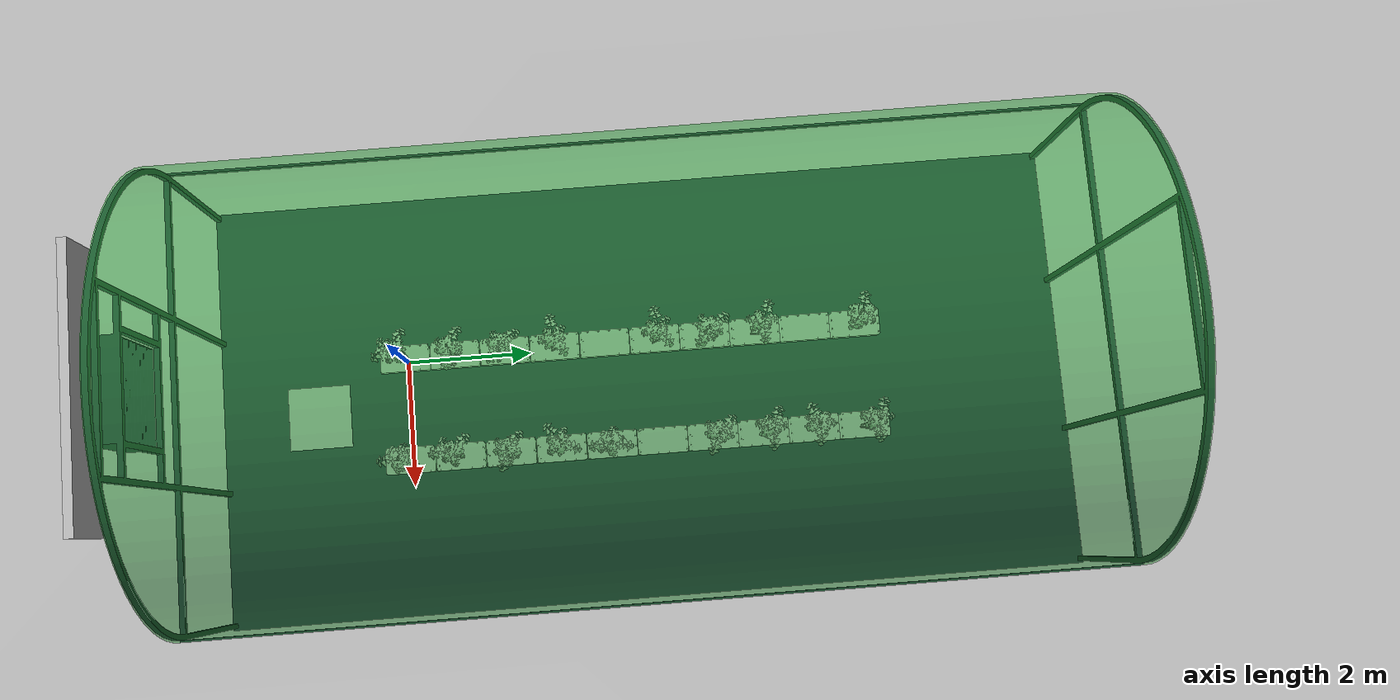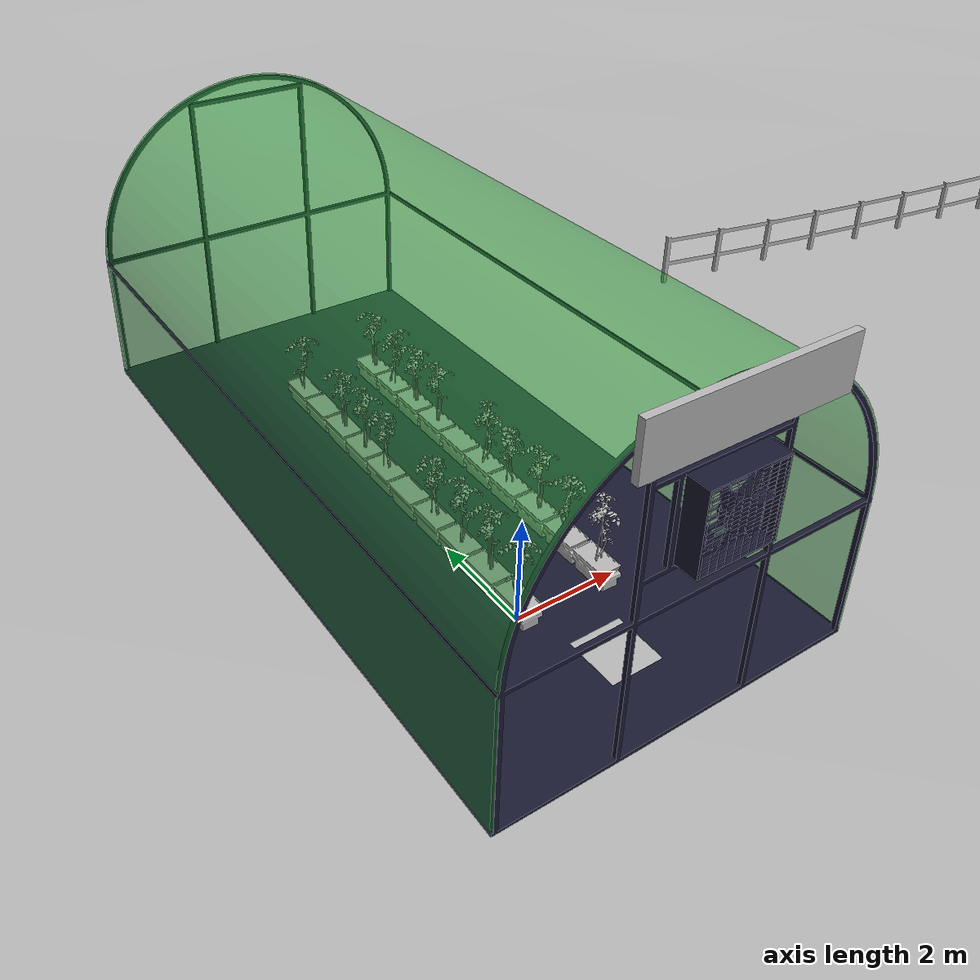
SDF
<sdf version="1.6">
 <world name="default">
  <light name="light0" type="directional">
   <pose>0 -18.818 8 0.75 -0 0</pose>
   <diffuse>0.5 0.5 0.5 1</diffuse>
   <specular>0.1 0.1 0.1 1</specular>
   <direction>0.1 0.1 -0.9</direction>
   <attenuation>
    <range>20</range>
    <constant>0.5</constant>
    <linear>0.01</linear>
    <quadratic>0.001</quadratic>
   </attenuation>
   <cast_shadows>0</cast_shadows>
  </light>
  <light name="light1" type="directional">
   <pose>0 -1.26453 6 0 -0 0</pose>
   <diffuse>0.5 0.5 0.5 1</diffuse>
   <specular>0.1 0.1 0.1 1</specular>
   <direction>0.1 0.1 -0.9</direction>
   <attenuation>
    <range>20</range>
    <constant>0.5</constant>
    <linear>0.01</linear>
    <quadratic>0.001</quadratic>
   </attenuation>
   <cast_shadows>0</cast_shadows>
  </light>
  <light name="light3" type="directional">
   <pose>3.9239 1.64974 4 0 1.2 0</pose>
   <diffuse>0.5 0.5 0.5 1</diffuse>
   <specular>0.1 0.1 0.1 1</specular>
   <direction>0.1 0.1 -0.9</direction>
   <attenuation>
    <range>20</range>
    <constant>0.5</constant>
    <linear>0.01</linear>
    <quadratic>0.001</quadratic>
   </attenuation>
   <cast_shadows>0</cast_shadows>
  </light>
  <light name="light4" type="directional">
   <pose>-2.5 4.649 4 0 -0.95 0</pose>
   <diffuse>0.5 0.5 0.5 1</diffuse>
   <specular>0.1 0.1 0.1 1</specular>
   <direction>0.1 0.1 -0.9</direction>
   <attenuation>
    <range>20</range>
    <constant>0.5</constant>
    <linear>0.01</linear>
    <quadratic>0.001</quadratic>
   </attenuation>
   <cast_shadows>0</cast_shadows>
  </light>
  <light name="light5" type="directional">
   <pose>0.454419 12.4783 5 -0.8 0 0</pose>
   <diffuse>0.5 0.5 0.5 1</diffuse>
   <specular>0.1 0.1 0.1 1</specular>
   <direction>0.1 0.1 -0.9</direction>
   <attenuation>
    <range>20</range>
    <constant>0.5</constant>
    <linear>0.01</linear>
    <quadratic>0.001</quadratic>
   </attenuation>
   <cast_shadows>0</cast_shadows>
  </light>
  <scene><shadows>false</shadows><grid>false</grid><sky><clouds><speed>4</speed></clouds></sky></scene>
  <include><uri>model://farm1</uri><pose>1.424045 -8.25 0.15 -0.02 0.029 0</pose></include>
  <include><uri>model://green_house</uri><pose>10.523 -2.987 0.1 1.57159 -0.001593 -3.14159</pose></include>
  <include>
   <uri>model://tomato_plant_2</uri>
   <name>plant00</name>
   <pose>0 0 0.49 0 0 5.34188268943</pose>
  </include>
  <include><uri>model://trough</uri><name>trough00</name><pose>0 0 0.09 1.57 0 1.57</pose></include>
  <include>
   <uri>model://tomato_plant_2</uri>
   <name>plant01</name>
   <pose>0 0.8 0.49 0 0 2.6135652518</pose>
  </include>
  <include><uri>model://trough</uri><name>trough01</name><pose>0 0.8 0.09 1.57 0 1.57</pose></include>
  <include>
   <uri>model://tomato_plant_2</uri>
   <name>plant02</name>
   <pose>0 1.6 0.49 0 0 2.12446453074</pose>
  </include>
  <include><uri>model://trough</uri><name>trough02</name><pose>0 1.6 0.09 1.57 0 1.57</pose></include>
  <include>
   <uri>model://tomato_plant_2</uri>
   <name>plant03</name>
   <pose>0 2.4 0.49 0 0 3.33601631712</pose>
  </include>
  <include><uri>model://trough</uri><name>trough03</name><pose>0 2.4 0.09 1.57 0 1.57</pose></include>
  <include><uri>model://trough</uri><name>trough04</name><pose>0 3.2 0.09 1.57 0 1.57</pose></include>
  <include>
   <uri>model://tomato_plant_3</uri>
   <name>plant05</name>
   <pose>0 4.0 0.49 0 0 3.38380320291</pose>
  </include>
  <include><uri>model://trough</uri><name>trough05</name><pose>0 4.0 0.09 1.57 0 1.57</pose></include>
  <include>
   <uri>model://tomato_plant_2</uri>
   <name>plant06</name>
   <pose>0 4.8 0.49 0 0 2.13792364415</pose>
  </include>
  <include><uri>model://trough</uri><name>trough06</name><pose>0 4.8 0.09 1.57 0 1.57</pose></include>
  <include>
   <uri>model://tomato_plant_3</uri>
   <name>plant07</name>
   <pose>0 5.6 0.49 0 0 2.85999831361</pose>
  </include>
  <include><uri>model://trough</uri><name>trough07</name><pose>0 5.6 0.09 1.57 0 1.57</pose></include>
  <include><uri>model://trough</uri><name>trough08</name><pose>0 6.4 0.09 1.57 0 1.57</pose></include>
  <include>
   <uri>model://tomato_plant_2</uri>
   <name>plant09</name>
   <pose>0 7.2 0.49 0 0 5.64805043451</pose>
  </include>
  <include><uri>model://trough</uri><name>trough09</name><pose>0 7.2 0.09 1.57 0 1.57</pose></include>
  <include>
   <uri>model://tomato_plant_2</uri>
   <name>plant10</name>
   <pose>1.62 0 0.49 0 0 1.25317275085</pose>
  </include>
  <include><uri>model://trough</uri><name>trough10</name><pose>1.62 0 0.09 1.57 0 1.57</pose></include>
  <include>
   <uri>model://tomato_plant_2</uri>
   <name>plant11</name>
   <pose>1.62 0.8 0.49 0 0 4.98673370775</pose>
  </include>
  <include><uri>model://trough</uri><name>trough11</name><pose>1.62 0.8 0.09 1.57 0 1.57</pose></include>
  <include>
   <uri>model://tomato_plant_3</uri>
   <name>plant12</name>
   <pose>1.62 1.6 0.49 0 0 2.4420932141</pose>
  </include>
  <include><uri>model://trough</uri><name>trough12</name><pose>1.62 1.6 0.09 1.57 0 1.57</pose></include>
  <include>
   <uri>model://tomato_plant_3</uri>
   <name>plant13</name>
   <pose>1.62 2.4 0.49 0 0 3.88825472158</pose>
  </include>
  <include><uri>model://trough</uri><name>trough13</name><pose>1.62 2.4 0.09 1.57 0 1.57</pose></include>
  <include>
   <uri>model://tomato_plant_2</uri>
   <name>plant14</name>
   <pose>1.62 3.2 0.49 0 0 1.365446238</pose>
  </include>
  <include><uri>model://trough</uri><name>trough14</name><pose>1.62 3.2 0.09 1.57 0 1.57</pose></include>
  <include><uri>model://trough</uri><name>trough15</name><pose>1.62 4.0 0.09 1.57 0 1.57</pose></include>
  <include>
   <uri>model://tomato_plant_2</uri>
   <name>plant16</name>
   <pose>1.62 4.8 0.49 0 0 2.37386384298</pose>
  </include>
  <include><uri>model://trough</uri><name>trough16</name><pose>1.62 4.8 0.09 1.57 0 1.57</pose></include>
  <include>
   <uri>model://tomato_plant_3</uri>
   <name>plant17</name>
   <pose>1.62 5.6 0.49 0 0 2.80530582763</pose>
  </include>
  <include><uri>model://trough</uri><name>trough17</name><pose>1.62 5.6 0.09 1.57 0 1.57</pose></include>
  <include>
   <uri>model://tomato_plant_2</uri>
   <name>plant18</name>
   <pose>1.62 6.4 0.49 0 0 0.00211446291264</pose>
  </include>
  <include><uri>model://trough</uri><name>trough18</name><pose>1.62 6.4 0.09 1.57 0 1.57</pose></include>
  <include>
   <uri>model://tomato_plant_3</uri>
   <name>plant19</name>
   <pose>1.62 7.2 0.49 0 0 2.85007383</pose>
  </include>
  <include><uri>model://trough</uri><name>trough19</name><pose>1.62 7.2 0.09 1.57 0 1.57</pose></include>
  <include><uri>model://start_zone</uri><name>start_zone</name><pose>0.8 -1.45 -0.02 0 0 0</pose></include>
 </world>
</sdf>

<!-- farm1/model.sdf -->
<sdf version="1.6">
  <model name="farm">
    <static>true</static>
    <link name="link">
      <collision name="colision1">
        <pose>0 0 0 0 0 0 </pose>
          <geometry>
            <box><size>2.32 1 1</size></box>
          </geometry>

      </collision>

      <visual name="visual1">
        <cast_shadows>false</cast_shadows>
	<pose> 0 0 0 0 0 0</pose>
        <geometry>
          <mesh>
            <uri>model://farm1/meshes/agriculture_world.dae</uri>

          </mesh>
        </geometry>
      </visual>

    </link>
  </model>
</sdf>

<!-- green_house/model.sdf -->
<sdf version="1.6">
  <model name="green_house">
    <static>true</static>

    <link name="link">
      <collision name="collision">
        <geometry>
          <mesh>
             <scale>0.001 0.001 0.001</scale>
            <uri>file://green_house/meshes/greenhouse_eyantra_glass.stl</uri>
          </mesh>
        </geometry>
      </collision>
      <visual name="branch">
        <geometry>
          <mesh>
                <scale>0.001 0.001 0.001</scale>
            <uri>file://green_house/meshes/greenhouse_eyantra_glass.stl</uri>

          </mesh>
        </geometry>

<material>
  <script>
    <name>Gazebo/GreenTransparent</name>
    <uri>file://media/materials/scripts/gazebo.material</uri>
  </script>
</material>

      </visual>
    </link>

    <link name="link2">
      <collision name="collision2">
        <geometry>
          <mesh>
             <scale>0.001 0.001 0.001</scale>
            <uri>file://green_house/meshes/greenhouse_eyantra_skeleton.stl</uri>
          </mesh>
        </geometry>
      </collision>
      <visual name="branch2">
        <geometry>
          <mesh>
                <scale>0.001 0.001 0.001</scale>
            <uri>file://green_house/meshes/greenhouse_eyantra_skeleton.stl</uri>

          </mesh>
        </geometry>

      <material>
          <ambient>0.1 0.1 0.1 1</ambient>
          <diffuse>0.1 0.1 0.2 1</diffuse>
          <specular>0 0 0 0</specular>
          <emissive>0 0 0 1</emissive>
        </material>

      </visual>
    </link>

    <link name="link3">
 <pose>9.7 5.5 -0.2 0 3.14 0</pose>
      <collision name="logo">
        <geometry>
          <mesh>
       <scale>400 400 400</scale>
            <uri>file://green_house/meshes/logo2.dae</uri>
          </mesh>
        </geometry>
      </collision>
      <visual name="logo_c">
        <geometry>
          <mesh>
  <scale>400 400 400</scale>
            <uri>file://green_house/meshes/logo2.dae</uri>

          </mesh>
        </geometry>

      </visual>
    </link>

        <joint name="logo" type="fixed">
            <pose>0 0 0 0 0 0</pose>
            <child>link3</child>
            <parent>link2</parent>

        </joint>

  </model>
</sdf>

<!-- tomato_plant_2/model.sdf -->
<sdf version="1.6">
    <model name="tomato_plant_2">
	<static>true</static>
      <link name="tomato_plant_link">

        <inertial>
          <pose>0 0 0 0 0 0</pose>
          <mass>20</mass>
          <inertia>
            <ixx>0.2006</ixx>
            <ixy>0</ixy>
            <ixz>0</ixz>
            <iyy>0.2006</iyy>
            <iyz>0</iyz>
            <izz>0.4</izz>
          </inertia>
        </inertial>

        <visual name="visual">
          <pose>0 0 0 0 0 0</pose>
          <geometry>
            <mesh><uri>model://tomato_plant_2/meshes/tomato_plant_2.obj</uri></mesh>
          </geometry>
        </visual>

        <collision name="collision">
          <pose>0 0 0.01 0 0 0</pose>
       <geometry>
          <cylinder>
            <radius>0.2</radius>
            <length>0.02</length>
          </cylinder>
        </geometry>
        </collision>
      </link>

    </model>
</sdf>

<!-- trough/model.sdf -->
<sdf version="1.6">
    <model name="trough">
	   <static>true</static>
      <link name="trough_link">

        <visual name="visual">
          <geometry>
            <mesh><uri>model://trough/meshes/truf_brick.obj</uri></mesh>
          </geometry>
        </visual>

        <collision name="collision">
          <pose>0 0.3 0 0 0 0</pose>
          <geometry>
          <box>
            <size>0.75 0.2 0.42</size>
          </box>
           </geometry>
        </collision>
      </link>

    </model>
</sdf>

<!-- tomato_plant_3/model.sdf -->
<sdf version="1.6">
    <model name="tomato_plant_3">
  <static>true</static>
      <link name="tomato_plant_link">

        <inertial>
          <pose>0 0 0 0 0 0</pose>
          <mass>20</mass>
          <inertia>
            <ixx>0.2006</ixx>
            <ixy>0</ixy>
            <ixz>0</ixz>
            <iyy>0.2006</iyy>
            <iyz>0</iyz>
            <izz>0.4</izz>
          </inertia>
        </inertial>

        <visual name="visual">
          <pose>0 0 0 0 0 0</pose>
          <geometry>
            <mesh><uri>model://tomato_plant_3/meshes/tomato_plant_3.obj</uri></mesh>
          </geometry>
        </visual>

        <collision name="collision">
          <pose>0 0 0.01 0 0 0</pose>
       <geometry>
          <cylinder>
            <radius>0.2</radius>
            <length>0.02</length>
          </cylinder>
        </geometry>
        </collision>
      </link>

    </model>
</sdf>

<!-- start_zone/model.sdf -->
<sdf version="1.6">
  <model name="aruco">
    <static>true</static>
    <link name="link">

      <visual name="visual1">
        <cast_shadows>false</cast_shadows>
        <pose> 0 0 0.1 1.57 0 0</pose>
        <geometry>
          <mesh>
            <uri>model://start_zone/meshes/start_zone.obj</uri>
            <scale>0.5 0.5 0.5</scale>

          </mesh>
        </geometry>
      </visual>

    </link>
  </model>
</sdf>
